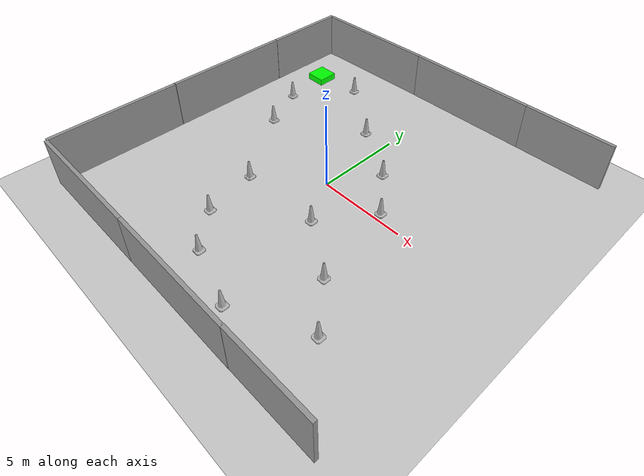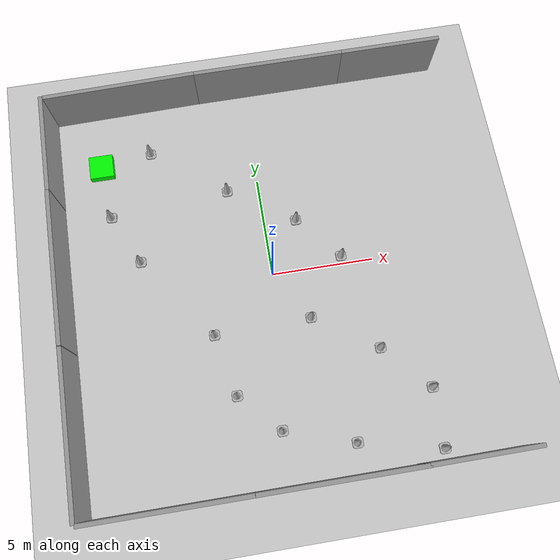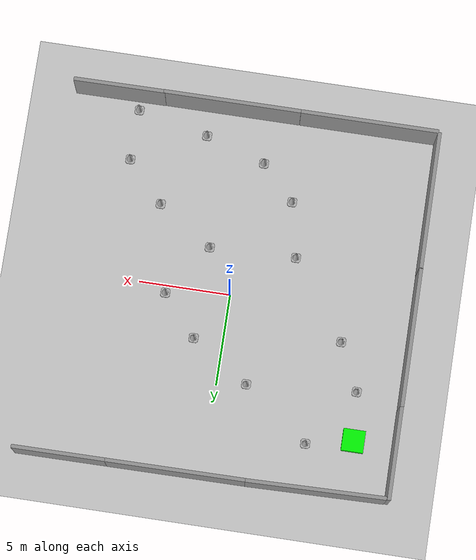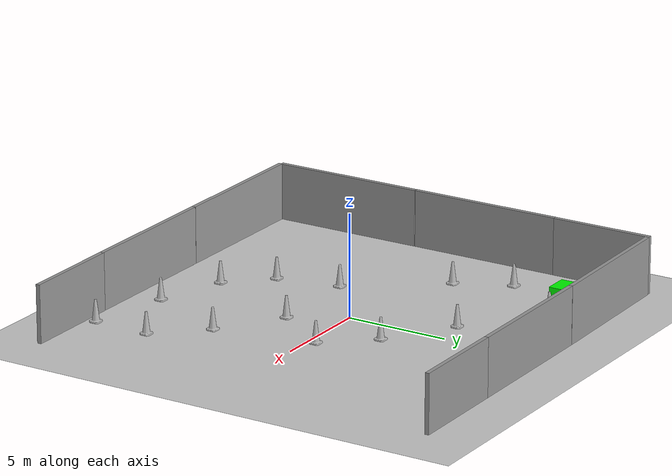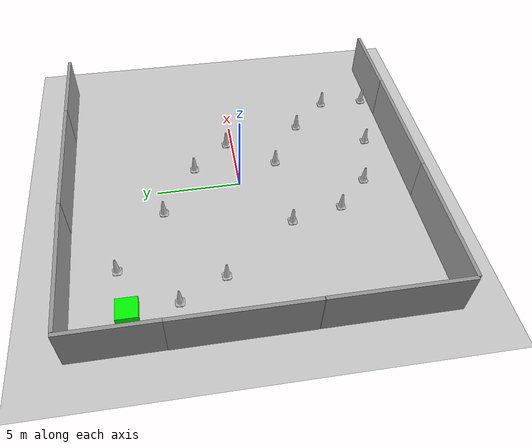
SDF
<sdf version="1.7">
 <world name="default">
  <light name="sun" type="directional">
   <pose>0 0 10 0 -0 0</pose>
   <diffuse>0.8 0.8 0.8 1</diffuse>
   <specular>0.2 0.2 0.2 1</specular>
   <attenuation>
    <range>1000</range>
    <constant>0.9</constant>
    <linear>0.01</linear>
    <quadratic>0.001</quadratic>
   </attenuation>
   <direction>-0.5 0.1 -0.9</direction>
   <spot><inner_angle>0</inner_angle><outer_angle>0</outer_angle><falloff>0</falloff></spot>
  </light>
  <model name="ground_plane">
   <static>1</static>
   <link name="link">
    <collision name="collision">
     <geometry><plane><normal>0 0 1</normal><size>100 100</size></plane></geometry>
     <surface>
      <contact><collide_bitmask>65535</collide_bitmask></contact>
      <friction><ode><mu>100</mu><mu2>50</mu2></ode></friction>
     </surface>
    </collision>
    <visual name="visual">
     <cast_shadows>0</cast_shadows>
     <geometry><plane><normal>0 0 1</normal><size>100 100</size></plane></geometry>
     <material>
      <script><uri>file://media/materials/scripts/gazebo.material</uri><name>Gazebo/Grey</name></script>
     </material>
    </visual>
   </link>
  </model>
  <gravity>0 0 -9.8</gravity>
  <magnetic_field>6e-06 2.3e-05 -4.2e-05</magnetic_field>
  <atmosphere type="adiabatic"/>
  <physics type="ode">
   <max_step_size>0.001</max_step_size>
   <real_time_factor>1</real_time_factor>
   <real_time_update_rate>1000</real_time_update_rate>
  </physics>
  <scene><ambient>0.4 0.4 0.4 1</ambient><background>0.7 0.7 0.7 1</background><shadows>1</shadows></scene>
  <spherical_coordinates>
   <surface_model>EARTH_WGS84</surface_model>
   <latitude_deg>0</latitude_deg>
   <longitude_deg>0</longitude_deg>
   <elevation>0</elevation>
   <heading_deg>0</heading_deg>
  </spherical_coordinates>
  <model name="grey_wall">
   <static>1</static>
   <link name="link">
    <pose>0 0 1.4 0 -0 0</pose>
    <collision name="collision"><geometry><box><size>7.5 0.2 2.8</size></box></geometry></collision>
    <visual name="visual">
     <cast_shadows>0</cast_shadows>
     <geometry><box><size>7.5 0.2 2.8</size></box></geometry>
     <material>
      <script>
       <uri>model://grey_wall/materials/scripts</uri>
       <uri>model://grey_wall/materials/textures</uri>
       <name>vrc/grey_wall</name>
      </script>
     </material>
    </visual>
   </link>
   <pose>-6.11478 -10.0725 0 0 -0 0</pose>
  </model>
  <model name="grey_wall_0">
   <static>1</static>
   <link name="link">
    <pose>0 0 1.4 0 -0 0</pose>
    <collision name="collision"><geometry><box><size>7.5 0.2 2.8</size></box></geometry></collision>
    <visual name="visual">
     <cast_shadows>0</cast_shadows>
     <geometry><box><size>7.5 0.2 2.8</size></box></geometry>
     <material>
      <script>
       <uri>model://grey_wall/materials/scripts</uri>
       <uri>model://grey_wall/materials/textures</uri>
       <name>vrc/grey_wall</name>
      </script>
     </material>
    </visual>
   </link>
   <pose>1.39121 -10.0719 0 0 -0 0</pose>
  </model>
  <model name="grey_wall_clone">
   <static>1</static>
   <link name="link">
    <pose>0 0 1.4 0 -0 0</pose>
    <collision name="collision"><geometry><box><size>7.5 0.2 2.8</size></box></geometry></collision>
    <visual name="visual">
     <cast_shadows>0</cast_shadows>
     <geometry><box><size>7.5 0.2 2.8</size></box></geometry>
     <material>
      <script>
       <uri>model://grey_wall/materials/scripts</uri>
       <uri>model://grey_wall/materials/textures</uri>
       <name>vrc/grey_wall</name>
      </script>
     </material>
    </visual>
   </link>
   <pose>-9.92999 -6.28001 0 0 0 -1.56889</pose>
  </model>
  <model name="grey_wall_clone_clone">
   <static>1</static>
   <link name="link">
    <pose>0 0 1.4 0 -0 0</pose>
    <collision name="collision"><geometry><box><size>7.5 0.2 2.8</size></box></geometry></collision>
    <visual name="visual">
     <cast_shadows>0</cast_shadows>
     <geometry><box><size>7.5 0.2 2.8</size></box></geometry>
     <material>
      <script>
       <uri>model://grey_wall/materials/scripts</uri>
       <uri>model://grey_wall/materials/textures</uri>
       <name>vrc/grey_wall</name>
      </script>
     </material>
    </visual>
   </link>
   <pose>-9.95127 1.2497 0 0 0 -1.56889</pose>
  </model>
  <model name="grey_wall_clone_clone_1">
   <static>1</static>
   <link name="link">
    <pose>0 0 1.4 0 -0 0</pose>
    <collision name="collision"><geometry><box><size>7.5 0.2 2.8</size></box></geometry></collision>
    <visual name="visual">
     <cast_shadows>0</cast_shadows>
     <geometry><box><size>7.5 0.2 2.8</size></box></geometry>
     <material>
      <script>
       <uri>model://grey_wall/materials/scripts</uri>
       <uri>model://grey_wall/materials/textures</uri>
       <name>vrc/grey_wall</name>
      </script>
     </material>
    </visual>
   </link>
   <pose>-6.08789 10.003 0 0 -0 0.021817</pose>
  </model>
  <model name="grey_wall_clone_clone_1_clone">
   <static>1</static>
   <link name="link">
    <pose>0 0 1.4 0 -0 0</pose>
    <collision name="collision"><geometry><box><size>7.5 0.2 2.8</size></box></geometry></collision>
    <visual name="visual">
     <cast_shadows>0</cast_shadows>
     <geometry><box><size>7.5 0.2 2.8</size></box></geometry>
     <material>
      <script>
       <uri>model://grey_wall/materials/scripts</uri>
       <uri>model://grey_wall/materials/textures</uri>
       <name>vrc/grey_wall</name>
      </script>
     </material>
    </visual>
   </link>
   <pose>1.39511 10.101 0 0 -0 0.005558</pose>
  </model>
  <model name="grey_wall_1_0">
   <link name="link">
    <pose>0 0 1.4 0 -0 0</pose>
    <inertial>
     <mass>1</mass>
     <inertia><ixx>1</ixx><ixy>0</ixy><ixz>0</ixz><iyy>1</iyy><iyz>0</iyz><izz>1</izz></inertia>
    </inertial>
    <visual name="visual">
     <cast_shadows>0</cast_shadows>
     <geometry><box><size>5 0.2 2.8</size></box></geometry>
     <material>
      <script>
       <uri>model://grey_wall/materials/scripts</uri>
       <uri>model://grey_wall/materials/textures</uri>
       <name>vrc/grey_wall</name>
      </script>
      <shader type="pixel"><normal_map>__default__</normal_map></shader>
      <ambient>1 1 1 1</ambient>
      <diffuse>1 1 1 1</diffuse>
      <specular>0 0 0 1</specular>
      <emissive>0 0 0 1</emissive>
     </material>
    </visual>
    <collision name="collision">
     <geometry><box><size>7.5 0.2 2.8</size></box></geometry>
     <surface>
      <friction>
       <ode><mu>1</mu><mu2>1</mu2><fdir1>0 0 0</fdir1><slip1>0</slip1><slip2>0</slip2></ode>
       <torsional>
        <coefficient>1</coefficient>
        <patch_radius>0</patch_radius>
        <surface_radius>0</surface_radius>
        <use_patch_radius>1</use_patch_radius>
        <ode><slip>0</slip></ode>
       </torsional>
      </friction>
      <bounce><restitution_coefficient>0</restitution_coefficient><threshold>1e+06</threshold></bounce>
      <contact>
       <collide_without_contact>0</collide_without_contact>
       <collide_without_contact_bitmask>1</collide_without_contact_bitmask>
       <collide_bitmask>1</collide_bitmask>
       <ode>
        <soft_cfm>0</soft_cfm>
        <soft_erp>0.2</soft_erp>
        <kp>1e+13</kp>
        <kd>1</kd>
        <max_vel>0.01</max_vel>
        <min_depth>0</min_depth>
       </ode>
       <bullet>
        <split_impulse>1</split_impulse>
        <split_impulse_penetration_threshold>-0.01</split_impulse_penetration_threshold>
        <soft_cfm>0</soft_cfm>
        <soft_erp>0.2</soft_erp>
        <kp>1e+13</kp>
        <kd>1</kd>
       </bullet>
      </contact>
     </surface>
    </collision>
   </link>
   <static>1</static>
   <pose>-9.95111 7.49551 0 0 0 -1.56889</pose>
  </model>
  <model name="grey_wall_1_0_clone">
   <link name="link">
    <pose>0 0 1.4 0 -0 0</pose>
    <inertial>
     <mass>1</mass>
     <inertia><ixx>1</ixx><ixy>0</ixy><ixz>0</ixz><iyy>1</iyy><iyz>0</iyz><izz>1</izz></inertia>
    </inertial>
    <visual name="visual">
     <cast_shadows>0</cast_shadows>
     <geometry><box><size>5 0.2 2.8</size></box></geometry>
     <material>
      <script>
       <uri>model://grey_wall/materials/scripts</uri>
       <uri>model://grey_wall/materials/textures</uri>
       <name>vrc/grey_wall</name>
      </script>
      <shader type="pixel"><normal_map>__default__</normal_map></shader>
      <ambient>1 1 1 1</ambient>
      <diffuse>1 1 1 1</diffuse>
      <specular>0 0 0 1</specular>
      <emissive>0 0 0 1</emissive>
     </material>
    </visual>
    <collision name="collision">
     <geometry><box><size>7.5 0.2 2.8</size></box></geometry>
     <surface>
      <friction>
       <ode><mu>1</mu><mu2>1</mu2><fdir1>0 0 0</fdir1><slip1>0</slip1><slip2>0</slip2></ode>
       <torsional>
        <coefficient>1</coefficient>
        <patch_radius>0</patch_radius>
        <surface_radius>0</surface_radius>
        <use_patch_radius>1</use_patch_radius>
        <ode><slip>0</slip></ode>
       </torsional>
      </friction>
      <bounce><restitution_coefficient>0</restitution_coefficient><threshold>1e+06</threshold></bounce>
      <contact>
       <collide_without_contact>0</collide_without_contact>
       <collide_without_contact_bitmask>1</collide_without_contact_bitmask>
       <collide_bitmask>1</collide_bitmask>
       <ode>
        <soft_cfm>0</soft_cfm>
        <soft_erp>0.2</soft_erp>
        <kp>1e+13</kp>
        <kd>1</kd>
        <max_vel>0.01</max_vel>
        <min_depth>0</min_depth>
       </ode>
       <bullet>
        <split_impulse>1</split_impulse>
        <split_impulse_penetration_threshold>-0.01</split_impulse_penetration_threshold>
        <soft_cfm>0</soft_cfm>
        <soft_erp>0.2</soft_erp>
        <kp>1e+13</kp>
        <kd>1</kd>
       </bullet>
      </contact>
     </surface>
    </collision>
   </link>
   <static>1</static>
   <pose>7.63556 10.1339 0 0 0 -3.13671</pose>
  </model>
  <model name="grey_wall_1_0_clone_clone">
   <link name="link">
    <pose>0 0 1.4 0 -0 0</pose>
    <inertial>
     <mass>1</mass>
     <inertia><ixx>1</ixx><ixy>0</ixy><ixz>0</ixz><iyy>1</iyy><iyz>0</iyz><izz>1</izz></inertia>
    </inertial>
    <visual name="visual">
     <cast_shadows>0</cast_shadows>
     <geometry><box><size>5 0.2 2.8</size></box></geometry>
     <material>
      <script>
       <uri>model://grey_wall/materials/scripts</uri>
       <uri>model://grey_wall/materials/textures</uri>
       <name>vrc/grey_wall</name>
      </script>
      <shader type="pixel"><normal_map>__default__</normal_map></shader>
      <ambient>1 1 1 1</ambient>
      <diffuse>1 1 1 1</diffuse>
      <specular>0 0 0 1</specular>
      <emissive>0 0 0 1</emissive>
     </material>
    </visual>
    <collision name="collision">
     <geometry><box><size>7.5 0.2 2.8</size></box></geometry>
     <surface>
      <friction>
       <ode><mu>1</mu><mu2>1</mu2><fdir1>0 0 0</fdir1><slip1>0</slip1><slip2>0</slip2></ode>
       <torsional>
        <coefficient>1</coefficient>
        <patch_radius>0</patch_radius>
        <surface_radius>0</surface_radius>
        <use_patch_radius>1</use_patch_radius>
        <ode><slip>0</slip></ode>
       </torsional>
      </friction>
      <bounce><restitution_coefficient>0</restitution_coefficient><threshold>1e+06</threshold></bounce>
      <contact>
       <collide_without_contact>0</collide_without_contact>
       <collide_without_contact_bitmask>1</collide_without_contact_bitmask>
       <collide_bitmask>1</collide_bitmask>
       <ode>
        <soft_cfm>0</soft_cfm>
        <soft_erp>0.2</soft_erp>
        <kp>1e+13</kp>
        <kd>1</kd>
        <max_vel>0.01</max_vel>
        <min_depth>0</min_depth>
       </ode>
       <bullet>
        <split_impulse>1</split_impulse>
        <split_impulse_penetration_threshold>-0.01</split_impulse_penetration_threshold>
        <soft_cfm>0</soft_cfm>
        <soft_erp>0.2</soft_erp>
        <kp>1e+13</kp>
        <kd>1</kd>
       </bullet>
      </contact>
     </surface>
    </collision>
   </link>
   <static>1</static>
   <pose>7.56443 -10.0501 0 0 0 -3.13671</pose>
  </model>
  <model name="Construction Cone">
   <link name="link">
    <collision name="collision">
     <geometry>
      <mesh><scale>10 10 10</scale><uri>model://construction_cone/meshes/construction_cone.dae</uri></mesh>
     </geometry>
    </collision>
    <visual name="visual">
     <geometry>
      <mesh><scale>10 10 10</scale><uri>model://construction_cone/meshes/construction_cone.dae</uri></mesh>
     </geometry>
    </visual>
    <inertial>
     <inertia><ixx>1</ixx><ixy>0</ixy><ixz>0</ixz><iyy>1</iyy><iyz>0</iyz><izz>1</izz></inertia>
     <mass>1</mass>
    </inertial>
   </link>
   <pose>-2.59859 -5.6153 -0 0 -1e-06 0</pose>
  </model>
  <model name="Construction Cone_0">
   <link name="link">
    <collision name="collision">
     <geometry>
      <mesh><scale>10 10 10</scale><uri>model://construction_cone/meshes/construction_cone.dae</uri></mesh>
     </geometry>
    </collision>
    <visual name="visual">
     <geometry>
      <mesh><scale>10 10 10</scale><uri>model://construction_cone/meshes/construction_cone.dae</uri></mesh>
     </geometry>
    </visual>
    <inertial>
     <inertia><ixx>1</ixx><ixy>0</ixy><ixz>0</ixz><iyy>1</iyy><iyz>0</iyz><izz>1</izz></inertia>
     <mass>1</mass>
    </inertial>
   </link>
   <pose>1.48528 -2.45135 -0 0 -0 0</pose>
  </model>
  <model name="Construction Cone_1">
   <link name="link">
    <collision name="collision">
     <geometry>
      <mesh><scale>10 10 10</scale><uri>model://construction_cone/meshes/construction_cone.dae</uri></mesh>
     </geometry>
    </collision>
    <visual name="visual">
     <geometry>
      <mesh><scale>10 10 10</scale><uri>model://construction_cone/meshes/construction_cone.dae</uri></mesh>
     </geometry>
    </visual>
    <inertial>
     <inertia><ixx>1</ixx><ixy>0</ixy><ixz>0</ixz><iyy>1</iyy><iyz>0</iyz><izz>1</izz></inertia>
     <mass>1</mass>
    </inertial>
   </link>
   <pose>6.5477 -6.66472 -0 -0 -0 -0</pose>
  </model>
  <model name="Construction Cone_1_clone">
   <link name="link">
    <collision name="collision">
     <geometry>
      <mesh><scale>10 10 10</scale><uri>model://construction_cone/meshes/construction_cone.dae</uri></mesh>
     </geometry>
    </collision>
    <visual name="visual">
     <geometry>
      <mesh><scale>10 10 10</scale><uri>model://construction_cone/meshes/construction_cone.dae</uri></mesh>
     </geometry>
    </visual>
    <inertial>
     <inertia><ixx>1</ixx><ixy>0</ixy><ixz>0</ixz><iyy>1</iyy><iyz>0</iyz><izz>1</izz></inertia>
     <mass>1</mass>
    </inertial>
   </link>
   <pose>4.51047 -4.44165 -0 -0 -0 -0</pose>
  </model>
  <model name="Construction Cone_1_clone_0">
   <link name="link">
    <collision name="collision">
     <geometry>
      <mesh><scale>10 10 10</scale><uri>model://construction_cone/meshes/construction_cone.dae</uri></mesh>
     </geometry>
    </collision>
    <visual name="visual">
     <geometry>
      <mesh><scale>10 10 10</scale><uri>model://construction_cone/meshes/construction_cone.dae</uri></mesh>
     </geometry>
    </visual>
    <inertial>
     <inertia><ixx>1</ixx><ixy>0</ixy><ixz>0</ixz><iyy>1</iyy><iyz>0</iyz><izz>1</izz></inertia>
     <mass>1</mass>
    </inertial>
   </link>
   <pose>-0.754505 -7.52624 -0 0 -0 0</pose>
  </model>
  <model name="Construction Cone_1_clone_1">
   <link name="link">
    <collision name="collision">
     <geometry>
      <mesh><scale>10 10 10</scale><uri>model://construction_cone/meshes/construction_cone.dae</uri></mesh>
     </geometry>
    </collision>
    <visual name="visual">
     <geometry>
      <mesh><scale>10 10 10</scale><uri>model://construction_cone/meshes/construction_cone.dae</uri></mesh>
     </geometry>
    </visual>
    <inertial>
     <inertia><ixx>1</ixx><ixy>0</ixy><ixz>0</ixz><iyy>1</iyy><iyz>0</iyz><izz>1</izz></inertia>
     <mass>1</mass>
    </inertial>
   </link>
   <pose>2.56913 -8.59892 -1e-05 0 -0 0</pose>
  </model>
  <model name="Construction Cone_1_clone_2">
   <link name="link">
    <collision name="collision">
     <geometry>
      <mesh><scale>10 10 10</scale><uri>model://construction_cone/meshes/construction_cone.dae</uri></mesh>
     </geometry>
    </collision>
    <visual name="visual">
     <geometry>
      <mesh><scale>10 10 10</scale><uri>model://construction_cone/meshes/construction_cone.dae</uri></mesh>
     </geometry>
    </visual>
    <inertial>
     <inertia><ixx>1</ixx><ixy>0</ixy><ixz>0</ixz><iyy>1</iyy><iyz>0</iyz><izz>1</izz></inertia>
     <mass>1</mass>
    </inertial>
   </link>
   <pose>3.49806 0.397795 -1e-05 -1e-06 0 0</pose>
  </model>
  <model name="Construction Cone_1_clone_3">
   <link name="link">
    <collision name="collision">
     <geometry>
      <mesh><scale>10 10 10</scale><uri>model://construction_cone/meshes/construction_cone.dae</uri></mesh>
     </geometry>
    </collision>
    <visual name="visual">
     <geometry>
      <mesh><scale>10 10 10</scale><uri>model://construction_cone/meshes/construction_cone.dae</uri></mesh>
     </geometry>
    </visual>
    <inertial>
     <inertia><ixx>1</ixx><ixy>0</ixy><ixz>0</ixz><iyy>1</iyy><iyz>0</iyz><izz>1</izz></inertia>
     <mass>1</mass>
    </inertial>
   </link>
   <pose>-3.25553 -2.57458 -1e-05 0 -0 0</pose>
  </model>
  <model name="Construction Cone_1_clone_4">
   <link name="link">
    <collision name="collision">
     <geometry>
      <mesh><scale>10 10 10</scale><uri>model://construction_cone/meshes/construction_cone.dae</uri></mesh>
     </geometry>
    </collision>
    <visual name="visual">
     <geometry>
      <mesh><scale>10 10 10</scale><uri>model://construction_cone/meshes/construction_cone.dae</uri></mesh>
     </geometry>
    </visual>
    <inertial>
     <inertia><ixx>1</ixx><ixy>0</ixy><ixz>0</ixz><iyy>1</iyy><iyz>0</iyz><izz>1</izz></inertia>
     <mass>1</mass>
    </inertial>
   </link>
   <pose>-6.35897 1.64711 -4e-06 4e-06 -0 0</pose>
  </model>
  <model name="Construction Cone_1_clone_5">
   <link name="link">
    <collision name="collision">
     <geometry>
      <mesh><scale>10 10 10</scale><uri>model://construction_cone/meshes/construction_cone.dae</uri></mesh>
     </geometry>
    </collision>
    <visual name="visual">
     <geometry>
      <mesh><scale>10 10 10</scale><uri>model://construction_cone/meshes/construction_cone.dae</uri></mesh>
     </geometry>
    </visual>
    <inertial>
     <inertia><ixx>1</ixx><ixy>0</ixy><ixz>0</ixz><iyy>1</iyy><iyz>0</iyz><izz>1</izz></inertia>
     <mass>1</mass>
    </inertial>
   </link>
   <pose>1.59907 2.62536 -8e-06 -4e-06 1e-06 0</pose>
  </model>
  <model name="Construction Cone_1_clone_6">
   <link name="link">
    <collision name="collision">
     <geometry>
      <mesh><scale>10 10 10</scale><uri>model://construction_cone/meshes/construction_cone.dae</uri></mesh>
     </geometry>
    </collision>
    <visual name="visual">
     <geometry>
      <mesh><scale>10 10 10</scale><uri>model://construction_cone/meshes/construction_cone.dae</uri></mesh>
     </geometry>
    </visual>
    <inertial>
     <inertia><ixx>1</ixx><ixy>0</ixy><ixz>0</ixz><iyy>1</iyy><iyz>0</iyz><izz>1</izz></inertia>
     <mass>1</mass>
    </inertial>
   </link>
   <pose>-1.59942 4.70311 -0 0 -0 0</pose>
  </model>
  <model name="Construction Cone_1_clone_7">
   <link name="link">
    <collision name="collision">
     <geometry>
      <mesh><scale>10 10 10</scale><uri>model://construction_cone/meshes/construction_cone.dae</uri></mesh>
     </geometry>
    </collision>
    <visual name="visual">
     <geometry>
      <mesh><scale>10 10 10</scale><uri>model://construction_cone/meshes/construction_cone.dae</uri></mesh>
     </geometry>
    </visual>
    <inertial>
     <inertia><ixx>1</ixx><ixy>0</ixy><ixz>0</ixz><iyy>1</iyy><iyz>0</iyz><izz>1</izz></inertia>
     <mass>1</mass>
    </inertial>
   </link>
   <pose>6.47915 -9.48149 -0 -0 -0 -0</pose>
  </model>
  <model name="Construction Cone_1_clone_8">
   <link name="link">
    <collision name="collision">
     <geometry>
      <mesh><scale>10 10 10</scale><uri>model://construction_cone/meshes/construction_cone.dae</uri></mesh>
     </geometry>
    </collision>
    <visual name="visual">
     <geometry>
      <mesh><scale>10 10 10</scale><uri>model://construction_cone/meshes/construction_cone.dae</uri></mesh>
     </geometry>
    </visual>
    <inertial>
     <inertia><ixx>1</ixx><ixy>0</ixy><ixz>0</ixz><iyy>1</iyy><iyz>0</iyz><izz>1</izz></inertia>
     <mass>1</mass>
    </inertial>
   </link>
   <pose>-7.56632 4.22206 -0 2e-06 -2e-06 -0.043646</pose>
  </model>
  <model name="Construction Cone_1_clone_9">
   <link name="link">
    <collision name="collision">
     <geometry>
      <mesh><scale>10 10 10</scale><uri>model://construction_cone/meshes/construction_cone.dae</uri></mesh>
     </geometry>
    </collision>
    <visual name="visual">
     <geometry>
      <mesh><scale>10 10 10</scale><uri>model://construction_cone/meshes/construction_cone.dae</uri></mesh>
     </geometry>
    </visual>
    <inertial>
     <inertia><ixx>1</ixx><ixy>0</ixy><ixz>0</ixz><iyy>1</iyy><iyz>0</iyz><izz>1</izz></inertia>
     <mass>1</mass>
    </inertial>
   </link>
   <pose>-5.22387 7.4149 -6e-06 2e-06 -0 0.015699</pose>
  </model>
  <model name="box_target_green_1">
   <link name="link">
    <inertial>
     <mass>1</mass>
     <inertia><ixx>1</ixx><ixy>0</ixy><ixz>0</ixz><iyy>1</iyy><iyz>0</iyz><izz>1</izz></inertia>
    </inertial>
    <visual name="visual">
     <geometry>
      <mesh><uri>model://box_target_green/meshes/mesh.dae</uri><scale>0.2 0.2 0.2</scale></mesh>
     </geometry>
     <material>
      <shader type="pixel"><normal_map>__default__</normal_map></shader>
      <script><name>ModelPreview_9::link::visual_MATERIAL_</name><uri>__default__</uri></script>
      <ambient>0 1 0 1</ambient>
      <diffuse>0 1 0 1</diffuse>
      <specular>0 1 0 1</specular>
      <emissive>0 1 0 1</emissive>
     </material>
    </visual>
    <collision name="collision">
     <geometry><box><size>1.5 1.5 1.5</size></box></geometry>
     <surface>
      <friction>
       <ode><mu>1</mu><mu2>1</mu2><fdir1>0 0 0</fdir1><slip1>0</slip1><slip2>0</slip2></ode>
       <torsional>
        <coefficient>1</coefficient>
        <patch_radius>0</patch_radius>
        <surface_radius>0</surface_radius>
        <use_patch_radius>1</use_patch_radius>
        <ode><slip>0</slip></ode>
       </torsional>
      </friction>
      <bounce><restitution_coefficient>0</restitution_coefficient><threshold>1e+06</threshold></bounce>
      <contact>
       <collide_without_contact>0</collide_without_contact>
       <collide_without_contact_bitmask>1</collide_without_contact_bitmask>
       <collide_bitmask>1</collide_bitmask>
       <ode>
        <soft_cfm>0</soft_cfm>
        <soft_erp>0.2</soft_erp>
        <kp>1e+13</kp>
        <kd>1</kd>
        <max_vel>0.01</max_vel>
        <min_depth>0</min_depth>
       </ode>
       <bullet>
        <split_impulse>1</split_impulse>
        <split_impulse_penetration_threshold>-0.01</split_impulse_penetration_threshold>
        <soft_cfm>0</soft_cfm>
        <soft_erp>0.2</soft_erp>
        <kp>1e+13</kp>
        <kd>1</kd>
       </bullet>
      </contact>
     </surface>
    </collision>
   </link>
   <static>1</static>
   <pose>-7.75052 6.91262 0.301134 0 -0 0</pose>
  </model>
 </world>
</sdf>
